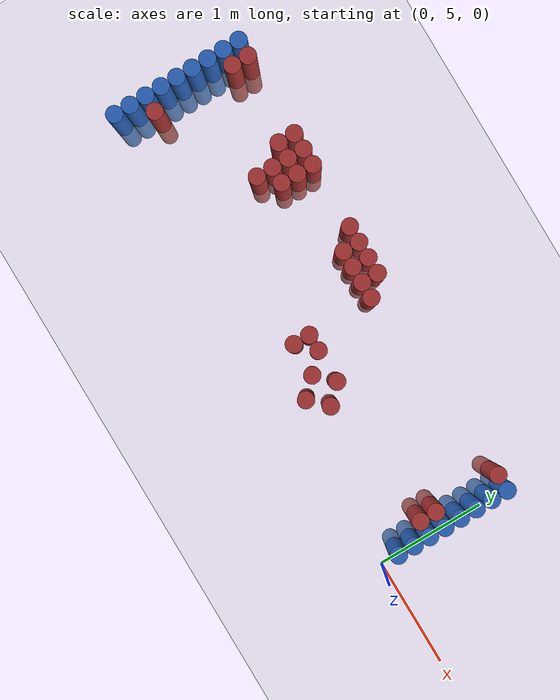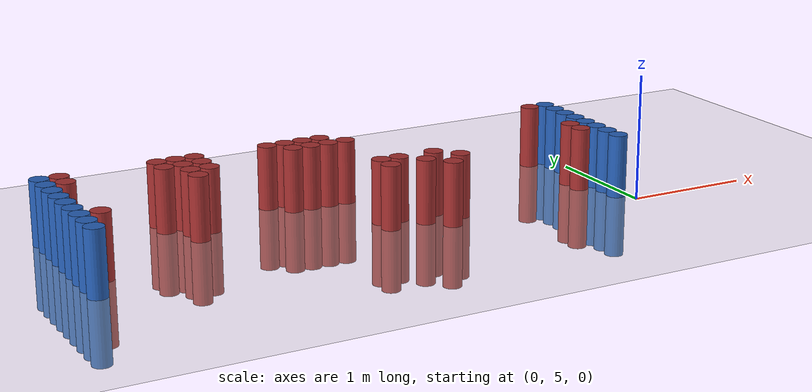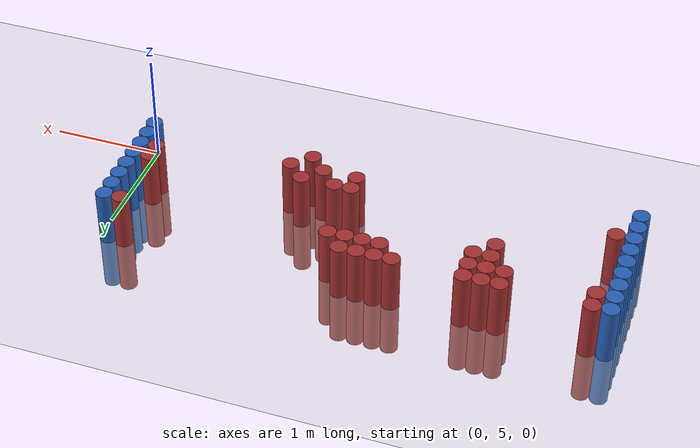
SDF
<sdf version="1.6">
 <world name="default">
  <model name="ground_plane">
   <static>1</static>
   <link name="link">
    <collision name="collision">
     <geometry><plane><normal>0 0 1</normal><size>100 100</size></plane></geometry>
     <surface><friction><ode><mu>100</mu><mu2>50</mu2></ode></friction></surface>
    </collision>
    <visual name="visual">
     <cast_shadows>0</cast_shadows>
     <geometry><plane><normal>0 0 1</normal><size>100 100</size></plane></geometry>
     <material>
      <script><uri>file://media/materials/scripts/gazebo.material</uri><name>Gazebo/Grey</name></script>
     </material>
    </visual>
   </link>
  </model>
  <model name="unit_cylinder_95">
   <static>1</static>
   <pose>-4.425000 5.025000 0.000000 0.000000 0.000000 0.000000</pose>
   <link name="link">
    <inertial>
     <mass>1</mass>
     <inertia><ixx>0.145833</ixx><ixy>0</ixy><ixz>0</ixz><iyy>0.145833</iyy><iyz>0</iyz><izz>0.125</izz></inertia>
    </inertial>
    <collision name="collision">
     <geometry><cylinder><radius>0.075000</radius><length>1</length></cylinder></geometry>
    </collision>
    <visual name="visual">
     <geometry><cylinder><radius>0.075000</radius><length>1</length></cylinder></geometry>
     <material>
      <ambient>0.152000 0.379000 0.720000 1</ambient>
      <diffuse>0.152000 0.379000 0.720000 1</diffuse>
     </material>
     <material>
      <script><name>Gazebo/Grey</name><uri>file://media/materials/scripts/gazebo.material</uri></script>
     </material>
    </visual>
   </link>
  </model>
  <model name="unit_cylinder_96">
   <static>1</static>
   <pose>-4.425000 5.175000 0.000000 0.000000 0.000000 0.000000</pose>
   <link name="link">
    <inertial>
     <mass>1</mass>
     <inertia><ixx>0.145833</ixx><ixy>0</ixy><ixz>0</ixz><iyy>0.145833</iyy><iyz>0</iyz><izz>0.125</izz></inertia>
    </inertial>
    <collision name="collision">
     <geometry><cylinder><radius>0.075000</radius><length>1</length></cylinder></geometry>
    </collision>
    <visual name="visual">
     <geometry><cylinder><radius>0.075000</radius><length>1</length></cylinder></geometry>
     <material>
      <ambient>0.152000 0.379000 0.720000 1</ambient>
      <diffuse>0.152000 0.379000 0.720000 1</diffuse>
     </material>
     <material>
      <script><name>Gazebo/Grey</name><uri>file://media/materials/scripts/gazebo.material</uri></script>
     </material>
    </visual>
   </link>
  </model>
  <model name="unit_cylinder_97">
   <static>1</static>
   <pose>-4.425000 5.325000 0.000000 0.000000 0.000000 0.000000</pose>
   <link name="link">
    <inertial>
     <mass>1</mass>
     <inertia><ixx>0.145833</ixx><ixy>0</ixy><ixz>0</ixz><iyy>0.145833</iyy><iyz>0</iyz><izz>0.125</izz></inertia>
    </inertial>
    <collision name="collision">
     <geometry><cylinder><radius>0.075000</radius><length>1</length></cylinder></geometry>
    </collision>
    <visual name="visual">
     <geometry><cylinder><radius>0.075000</radius><length>1</length></cylinder></geometry>
     <material>
      <ambient>0.152000 0.379000 0.720000 1</ambient>
      <diffuse>0.152000 0.379000 0.720000 1</diffuse>
     </material>
     <material>
      <script><name>Gazebo/Grey</name><uri>file://media/materials/scripts/gazebo.material</uri></script>
     </material>
    </visual>
   </link>
  </model>
  <model name="unit_cylinder_98">
   <static>1</static>
   <pose>-4.425000 5.475000 0.000000 0.000000 0.000000 0.000000</pose>
   <link name="link">
    <inertial>
     <mass>1</mass>
     <inertia><ixx>0.145833</ixx><ixy>0</ixy><ixz>0</ixz><iyy>0.145833</iyy><iyz>0</iyz><izz>0.125</izz></inertia>
    </inertial>
    <collision name="collision">
     <geometry><cylinder><radius>0.075000</radius><length>1</length></cylinder></geometry>
    </collision>
    <visual name="visual">
     <geometry><cylinder><radius>0.075000</radius><length>1</length></cylinder></geometry>
     <material>
      <ambient>0.152000 0.379000 0.720000 1</ambient>
      <diffuse>0.152000 0.379000 0.720000 1</diffuse>
     </material>
     <material>
      <script><name>Gazebo/Grey</name><uri>file://media/materials/scripts/gazebo.material</uri></script>
     </material>
    </visual>
   </link>
  </model>
  <model name="unit_cylinder_99">
   <static>1</static>
   <pose>-4.425000 5.625000 0.000000 0.000000 0.000000 0.000000</pose>
   <link name="link">
    <inertial>
     <mass>1</mass>
     <inertia><ixx>0.145833</ixx><ixy>0</ixy><ixz>0</ixz><iyy>0.145833</iyy><iyz>0</iyz><izz>0.125</izz></inertia>
    </inertial>
    <collision name="collision">
     <geometry><cylinder><radius>0.075000</radius><length>1</length></cylinder></geometry>
    </collision>
    <visual name="visual">
     <geometry><cylinder><radius>0.075000</radius><length>1</length></cylinder></geometry>
     <material>
      <ambient>0.152000 0.379000 0.720000 1</ambient>
      <diffuse>0.152000 0.379000 0.720000 1</diffuse>
     </material>
     <material>
      <script><name>Gazebo/Grey</name><uri>file://media/materials/scripts/gazebo.material</uri></script>
     </material>
    </visual>
   </link>
  </model>
  <model name="unit_cylinder_100">
   <static>1</static>
   <pose>-4.425000 5.775000 0.000000 0.000000 0.000000 0.000000</pose>
   <link name="link">
    <inertial>
     <mass>1</mass>
     <inertia><ixx>0.145833</ixx><ixy>0</ixy><ixz>0</ixz><iyy>0.145833</iyy><iyz>0</iyz><izz>0.125</izz></inertia>
    </inertial>
    <collision name="collision">
     <geometry><cylinder><radius>0.075000</radius><length>1</length></cylinder></geometry>
    </collision>
    <visual name="visual">
     <geometry><cylinder><radius>0.075000</radius><length>1</length></cylinder></geometry>
     <material>
      <ambient>0.152000 0.379000 0.720000 1</ambient>
      <diffuse>0.152000 0.379000 0.720000 1</diffuse>
     </material>
     <material>
      <script><name>Gazebo/Grey</name><uri>file://media/materials/scripts/gazebo.material</uri></script>
     </material>
    </visual>
   </link>
  </model>
  <model name="unit_cylinder_101">
   <static>1</static>
   <pose>-4.425000 5.925000 0.000000 0.000000 0.000000 0.000000</pose>
   <link name="link">
    <inertial>
     <mass>1</mass>
     <inertia><ixx>0.145833</ixx><ixy>0</ixy><ixz>0</ixz><iyy>0.145833</iyy><iyz>0</iyz><izz>0.125</izz></inertia>
    </inertial>
    <collision name="collision">
     <geometry><cylinder><radius>0.075000</radius><length>1</length></cylinder></geometry>
    </collision>
    <visual name="visual">
     <geometry><cylinder><radius>0.075000</radius><length>1</length></cylinder></geometry>
     <material>
      <ambient>0.152000 0.379000 0.720000 1</ambient>
      <diffuse>0.152000 0.379000 0.720000 1</diffuse>
     </material>
     <material>
      <script><name>Gazebo/Grey</name><uri>file://media/materials/scripts/gazebo.material</uri></script>
     </material>
    </visual>
   </link>
  </model>
  <model name="unit_cylinder_102">
   <static>1</static>
   <pose>-4.425000 6.075000 0.000000 0.000000 0.000000 0.000000</pose>
   <link name="link">
    <inertial>
     <mass>1</mass>
     <inertia><ixx>0.145833</ixx><ixy>0</ixy><ixz>0</ixz><iyy>0.145833</iyy><iyz>0</iyz><izz>0.125</izz></inertia>
    </inertial>
    <collision name="collision">
     <geometry><cylinder><radius>0.075000</radius><length>1</length></cylinder></geometry>
    </collision>
    <visual name="visual">
     <geometry><cylinder><radius>0.075000</radius><length>1</length></cylinder></geometry>
     <material>
      <ambient>0.152000 0.379000 0.720000 1</ambient>
      <diffuse>0.152000 0.379000 0.720000 1</diffuse>
     </material>
     <material>
      <script><name>Gazebo/Grey</name><uri>file://media/materials/scripts/gazebo.material</uri></script>
     </material>
    </visual>
   </link>
  </model>
  <model name="unit_cylinder_103">
   <static>1</static>
   <pose>-4.425000 6.225000 0.000000 0.000000 0.000000 0.000000</pose>
   <link name="link">
    <inertial>
     <mass>1</mass>
     <inertia><ixx>0.145833</ixx><ixy>0</ixy><ixz>0</ixz><iyy>0.145833</iyy><iyz>0</iyz><izz>0.125</izz></inertia>
    </inertial>
    <collision name="collision">
     <geometry><cylinder><radius>0.075000</radius><length>1</length></cylinder></geometry>
    </collision>
    <visual name="visual">
     <geometry><cylinder><radius>0.075000</radius><length>1</length></cylinder></geometry>
     <material>
      <ambient>0.152000 0.379000 0.720000 1</ambient>
      <diffuse>0.152000 0.379000 0.720000 1</diffuse>
     </material>
     <material>
      <script><name>Gazebo/Grey</name><uri>file://media/materials/scripts/gazebo.material</uri></script>
     </material>
    </visual>
   </link>
  </model>
  <model name="unit_cylinder_126">
   <static>1</static>
   <pose>-4.275000 5.325000 0.000000 0.000000 0.000000 0.000000</pose>
   <link name="link">
    <inertial>
     <mass>1</mass>
     <inertia><ixx>0.145833</ixx><ixy>0</ixy><ixz>0</ixz><iyy>0.145833</iyy><iyz>0</iyz><izz>0.125</izz></inertia>
    </inertial>
    <collision name="collision">
     <geometry><cylinder><radius>0.075000</radius><length>1</length></cylinder></geometry>
    </collision>
    <visual name="visual">
     <geometry><cylinder><radius>0.075000</radius><length>1</length></cylinder></geometry>
     <material>
      <ambient>0.648000 0.192000 0.192000 1</ambient>
      <diffuse>0.648000 0.192000 0.192000 1</diffuse>
     </material>
     <material>
      <script><name>Gazebo/Grey</name><uri>file://media/materials/scripts/gazebo.material</uri></script>
     </material>
    </visual>
   </link>
  </model>
  <model name="unit_cylinder_127">
   <static>1</static>
   <pose>-4.275000 6.075000 0.000000 0.000000 0.000000 0.000000</pose>
   <link name="link">
    <inertial>
     <mass>1</mass>
     <inertia><ixx>0.145833</ixx><ixy>0</ixy><ixz>0</ixz><iyy>0.145833</iyy><iyz>0</iyz><izz>0.125</izz></inertia>
    </inertial>
    <collision name="collision">
     <geometry><cylinder><radius>0.075000</radius><length>1</length></cylinder></geometry>
    </collision>
    <visual name="visual">
     <geometry><cylinder><radius>0.075000</radius><length>1</length></cylinder></geometry>
     <material>
      <ambient>0.648000 0.192000 0.192000 1</ambient>
      <diffuse>0.648000 0.192000 0.192000 1</diffuse>
     </material>
     <material>
      <script><name>Gazebo/Grey</name><uri>file://media/materials/scripts/gazebo.material</uri></script>
     </material>
    </visual>
   </link>
  </model>
  <model name="unit_cylinder_128">
   <static>1</static>
   <pose>-4.275000 6.225000 0.000000 0.000000 0.000000 0.000000</pose>
   <link name="link">
    <inertial>
     <mass>1</mass>
     <inertia><ixx>0.145833</ixx><ixy>0</ixy><ixz>0</ixz><iyy>0.145833</iyy><iyz>0</iyz><izz>0.125</izz></inertia>
    </inertial>
    <collision name="collision">
     <geometry><cylinder><radius>0.075000</radius><length>1</length></cylinder></geometry>
    </collision>
    <visual name="visual">
     <geometry><cylinder><radius>0.075000</radius><length>1</length></cylinder></geometry>
     <material>
      <ambient>0.648000 0.192000 0.192000 1</ambient>
      <diffuse>0.648000 0.192000 0.192000 1</diffuse>
     </material>
     <material>
      <script><name>Gazebo/Grey</name><uri>file://media/materials/scripts/gazebo.material</uri></script>
     </material>
    </visual>
   </link>
  </model>
  <model name="unit_cylinder_166">
   <static>1</static>
   <pose>-3.525000 6.075000 0.000000 0.000000 0.000000 0.000000</pose>
   <link name="link">
    <inertial>
     <mass>1</mass>
     <inertia><ixx>0.145833</ixx><ixy>0</ixy><ixz>0</ixz><iyy>0.145833</iyy><iyz>0</iyz><izz>0.125</izz></inertia>
    </inertial>
    <collision name="collision">
     <geometry><cylinder><radius>0.075000</radius><length>1</length></cylinder></geometry>
    </collision>
    <visual name="visual">
     <geometry><cylinder><radius>0.075000</radius><length>1</length></cylinder></geometry>
     <material>
      <ambient>0.648000 0.192000 0.192000 1</ambient>
      <diffuse>0.648000 0.192000 0.192000 1</diffuse>
     </material>
     <material>
      <script><name>Gazebo/Grey</name><uri>file://media/materials/scripts/gazebo.material</uri></script>
     </material>
    </visual>
   </link>
  </model>
  <model name="unit_cylinder_167">
   <static>1</static>
   <pose>-3.525000 6.225000 0.000000 0.000000 0.000000 0.000000</pose>
   <link name="link">
    <inertial>
     <mass>1</mass>
     <inertia><ixx>0.145833</ixx><ixy>0</ixy><ixz>0</ixz><iyy>0.145833</iyy><iyz>0</iyz><izz>0.125</izz></inertia>
    </inertial>
    <collision name="collision">
     <geometry><cylinder><radius>0.075000</radius><length>1</length></cylinder></geometry>
    </collision>
    <visual name="visual">
     <geometry><cylinder><radius>0.075000</radius><length>1</length></cylinder></geometry>
     <material>
      <ambient>0.648000 0.192000 0.192000 1</ambient>
      <diffuse>0.648000 0.192000 0.192000 1</diffuse>
     </material>
     <material>
      <script><name>Gazebo/Grey</name><uri>file://media/materials/scripts/gazebo.material</uri></script>
     </material>
    </visual>
   </link>
  </model>
  <model name="unit_cylinder_170">
   <static>1</static>
   <pose>-3.375000 5.775000 0.000000 0.000000 0.000000 0.000000</pose>
   <link name="link">
    <inertial>
     <mass>1</mass>
     <inertia><ixx>0.145833</ixx><ixy>0</ixy><ixz>0</ixz><iyy>0.145833</iyy><iyz>0</iyz><izz>0.125</izz></inertia>
    </inertial>
    <collision name="collision">
     <geometry><cylinder><radius>0.075000</radius><length>1</length></cylinder></geometry>
    </collision>
    <visual name="visual">
     <geometry><cylinder><radius>0.075000</radius><length>1</length></cylinder></geometry>
     <material>
      <ambient>0.648000 0.192000 0.192000 1</ambient>
      <diffuse>0.648000 0.192000 0.192000 1</diffuse>
     </material>
     <material>
      <script><name>Gazebo/Grey</name><uri>file://media/materials/scripts/gazebo.material</uri></script>
     </material>
    </visual>
   </link>
  </model>
  <model name="unit_cylinder_171">
   <static>1</static>
   <pose>-3.375000 5.925000 0.000000 0.000000 0.000000 0.000000</pose>
   <link name="link">
    <inertial>
     <mass>1</mass>
     <inertia><ixx>0.145833</ixx><ixy>0</ixy><ixz>0</ixz><iyy>0.145833</iyy><iyz>0</iyz><izz>0.125</izz></inertia>
    </inertial>
    <collision name="collision">
     <geometry><cylinder><radius>0.075000</radius><length>1</length></cylinder></geometry>
    </collision>
    <visual name="visual">
     <geometry><cylinder><radius>0.075000</radius><length>1</length></cylinder></geometry>
     <material>
      <ambient>0.648000 0.192000 0.192000 1</ambient>
      <diffuse>0.648000 0.192000 0.192000 1</diffuse>
     </material>
     <material>
      <script><name>Gazebo/Grey</name><uri>file://media/materials/scripts/gazebo.material</uri></script>
     </material>
    </visual>
   </link>
  </model>
  <model name="unit_cylinder_172">
   <static>1</static>
   <pose>-3.375000 6.075000 0.000000 0.000000 0.000000 0.000000</pose>
   <link name="link">
    <inertial>
     <mass>1</mass>
     <inertia><ixx>0.145833</ixx><ixy>0</ixy><ixz>0</ixz><iyy>0.145833</iyy><iyz>0</iyz><izz>0.125</izz></inertia>
    </inertial>
    <collision name="collision">
     <geometry><cylinder><radius>0.075000</radius><length>1</length></cylinder></geometry>
    </collision>
    <visual name="visual">
     <geometry><cylinder><radius>0.075000</radius><length>1</length></cylinder></geometry>
     <material>
      <ambient>0.648000 0.192000 0.192000 1</ambient>
      <diffuse>0.648000 0.192000 0.192000 1</diffuse>
     </material>
     <material>
      <script><name>Gazebo/Grey</name><uri>file://media/materials/scripts/gazebo.material</uri></script>
     </material>
    </visual>
   </link>
  </model>
  <model name="unit_cylinder_173">
   <static>1</static>
   <pose>-3.375000 6.225000 0.000000 0.000000 0.000000 0.000000</pose>
   <link name="link">
    <inertial>
     <mass>1</mass>
     <inertia><ixx>0.145833</ixx><ixy>0</ixy><ixz>0</ixz><iyy>0.145833</iyy><iyz>0</iyz><izz>0.125</izz></inertia>
    </inertial>
    <collision name="collision">
     <geometry><cylinder><radius>0.075000</radius><length>1</length></cylinder></geometry>
    </collision>
    <visual name="visual">
     <geometry><cylinder><radius>0.075000</radius><length>1</length></cylinder></geometry>
     <material>
      <ambient>0.648000 0.192000 0.192000 1</ambient>
      <diffuse>0.648000 0.192000 0.192000 1</diffuse>
     </material>
     <material>
      <script><name>Gazebo/Grey</name><uri>file://media/materials/scripts/gazebo.material</uri></script>
     </material>
    </visual>
   </link>
  </model>
  <model name="unit_cylinder_177">
   <static>1</static>
   <pose>-3.225000 5.925000 0.000000 0.000000 0.000000 0.000000</pose>
   <link name="link">
    <inertial>
     <mass>1</mass>
     <inertia><ixx>0.145833</ixx><ixy>0</ixy><ixz>0</ixz><iyy>0.145833</iyy><iyz>0</iyz><izz>0.125</izz></inertia>
    </inertial>
    <collision name="collision">
     <geometry><cylinder><radius>0.075000</radius><length>1</length></cylinder></geometry>
    </collision>
    <visual name="visual">
     <geometry><cylinder><radius>0.075000</radius><length>1</length></cylinder></geometry>
     <material>
      <ambient>0.648000 0.192000 0.192000 1</ambient>
      <diffuse>0.648000 0.192000 0.192000 1</diffuse>
     </material>
     <material>
      <script><name>Gazebo/Grey</name><uri>file://media/materials/scripts/gazebo.material</uri></script>
     </material>
    </visual>
   </link>
  </model>
  <model name="unit_cylinder_178">
   <static>1</static>
   <pose>-3.225000 6.075000 0.000000 0.000000 0.000000 0.000000</pose>
   <link name="link">
    <inertial>
     <mass>1</mass>
     <inertia><ixx>0.145833</ixx><ixy>0</ixy><ixz>0</ixz><iyy>0.145833</iyy><iyz>0</iyz><izz>0.125</izz></inertia>
    </inertial>
    <collision name="collision">
     <geometry><cylinder><radius>0.075000</radius><length>1</length></cylinder></geometry>
    </collision>
    <visual name="visual">
     <geometry><cylinder><radius>0.075000</radius><length>1</length></cylinder></geometry>
     <material>
      <ambient>0.648000 0.192000 0.192000 1</ambient>
      <diffuse>0.648000 0.192000 0.192000 1</diffuse>
     </material>
     <material>
      <script><name>Gazebo/Grey</name><uri>file://media/materials/scripts/gazebo.material</uri></script>
     </material>
    </visual>
   </link>
  </model>
  <model name="unit_cylinder_179">
   <static>1</static>
   <pose>-3.225000 6.225000 0.000000 0.000000 0.000000 0.000000</pose>
   <link name="link">
    <inertial>
     <mass>1</mass>
     <inertia><ixx>0.145833</ixx><ixy>0</ixy><ixz>0</ixz><iyy>0.145833</iyy><iyz>0</iyz><izz>0.125</izz></inertia>
    </inertial>
    <collision name="collision">
     <geometry><cylinder><radius>0.075000</radius><length>1</length></cylinder></geometry>
    </collision>
    <visual name="visual">
     <geometry><cylinder><radius>0.075000</radius><length>1</length></cylinder></geometry>
     <material>
      <ambient>0.648000 0.192000 0.192000 1</ambient>
      <diffuse>0.648000 0.192000 0.192000 1</diffuse>
     </material>
     <material>
      <script><name>Gazebo/Grey</name><uri>file://media/materials/scripts/gazebo.material</uri></script>
     </material>
    </visual>
   </link>
  </model>
  <model name="unit_cylinder_199">
   <static>1</static>
   <pose>-2.625000 6.225000 0.000000 0.000000 0.000000 0.000000</pose>
   <link name="link">
    <inertial>
     <mass>1</mass>
     <inertia><ixx>0.145833</ixx><ixy>0</ixy><ixz>0</ixz><iyy>0.145833</iyy><iyz>0</iyz><izz>0.125</izz></inertia>
    </inertial>
    <collision name="collision">
     <geometry><cylinder><radius>0.075000</radius><length>1</length></cylinder></geometry>
    </collision>
    <visual name="visual">
     <geometry><cylinder><radius>0.075000</radius><length>1</length></cylinder></geometry>
     <material>
      <ambient>0.648000 0.192000 0.192000 1</ambient>
      <diffuse>0.648000 0.192000 0.192000 1</diffuse>
     </material>
     <material>
      <script><name>Gazebo/Grey</name><uri>file://media/materials/scripts/gazebo.material</uri></script>
     </material>
    </visual>
   </link>
  </model>
  <model name="unit_cylinder_203">
   <static>1</static>
   <pose>-2.475000 6.075000 0.000000 0.000000 0.000000 0.000000</pose>
   <link name="link">
    <inertial>
     <mass>1</mass>
     <inertia><ixx>0.145833</ixx><ixy>0</ixy><ixz>0</ixz><iyy>0.145833</iyy><iyz>0</iyz><izz>0.125</izz></inertia>
    </inertial>
    <collision name="collision">
     <geometry><cylinder><radius>0.075000</radius><length>1</length></cylinder></geometry>
    </collision>
    <visual name="visual">
     <geometry><cylinder><radius>0.075000</radius><length>1</length></cylinder></geometry>
     <material>
      <ambient>0.648000 0.192000 0.192000 1</ambient>
      <diffuse>0.648000 0.192000 0.192000 1</diffuse>
     </material>
     <material>
      <script><name>Gazebo/Grey</name><uri>file://media/materials/scripts/gazebo.material</uri></script>
     </material>
    </visual>
   </link>
  </model>
  <model name="unit_cylinder_204">
   <static>1</static>
   <pose>-2.475000 6.225000 0.000000 0.000000 0.000000 0.000000</pose>
   <link name="link">
    <inertial>
     <mass>1</mass>
     <inertia><ixx>0.145833</ixx><ixy>0</ixy><ixz>0</ixz><iyy>0.145833</iyy><iyz>0</iyz><izz>0.125</izz></inertia>
    </inertial>
    <collision name="collision">
     <geometry><cylinder><radius>0.075000</radius><length>1</length></cylinder></geometry>
    </collision>
    <visual name="visual">
     <geometry><cylinder><radius>0.075000</radius><length>1</length></cylinder></geometry>
     <material>
      <ambient>0.648000 0.192000 0.192000 1</ambient>
      <diffuse>0.648000 0.192000 0.192000 1</diffuse>
     </material>
     <material>
      <script><name>Gazebo/Grey</name><uri>file://media/materials/scripts/gazebo.material</uri></script>
     </material>
    </visual>
   </link>
  </model>
  <model name="unit_cylinder_207">
   <static>1</static>
   <pose>-2.325000 6.075000 0.000000 0.000000 0.000000 0.000000</pose>
   <link name="link">
    <inertial>
     <mass>1</mass>
     <inertia><ixx>0.145833</ixx><ixy>0</ixy><ixz>0</ixz><iyy>0.145833</iyy><iyz>0</iyz><izz>0.125</izz></inertia>
    </inertial>
    <collision name="collision">
     <geometry><cylinder><radius>0.075000</radius><length>1</length></cylinder></geometry>
    </collision>
    <visual name="visual">
     <geometry><cylinder><radius>0.075000</radius><length>1</length></cylinder></geometry>
     <material>
      <ambient>0.648000 0.192000 0.192000 1</ambient>
      <diffuse>0.648000 0.192000 0.192000 1</diffuse>
     </material>
     <material>
      <script><name>Gazebo/Grey</name><uri>file://media/materials/scripts/gazebo.material</uri></script>
     </material>
    </visual>
   </link>
  </model>
  <model name="unit_cylinder_208">
   <static>1</static>
   <pose>-2.325000 6.225000 0.000000 0.000000 0.000000 0.000000</pose>
   <link name="link">
    <inertial>
     <mass>1</mass>
     <inertia><ixx>0.145833</ixx><ixy>0</ixy><ixz>0</ixz><iyy>0.145833</iyy><iyz>0</iyz><izz>0.125</izz></inertia>
    </inertial>
    <collision name="collision">
     <geometry><cylinder><radius>0.075000</radius><length>1</length></cylinder></geometry>
    </collision>
    <visual name="visual">
     <geometry><cylinder><radius>0.075000</radius><length>1</length></cylinder></geometry>
     <material>
      <ambient>0.648000 0.192000 0.192000 1</ambient>
      <diffuse>0.648000 0.192000 0.192000 1</diffuse>
     </material>
     <material>
      <script><name>Gazebo/Grey</name><uri>file://media/materials/scripts/gazebo.material</uri></script>
     </material>
    </visual>
   </link>
  </model>
  <model name="unit_cylinder_212">
   <static>1</static>
   <pose>-2.175000 6.075000 0.000000 0.000000 0.000000 0.000000</pose>
   <link name="link">
    <inertial>
     <mass>1</mass>
     <inertia><ixx>0.145833</ixx><ixy>0</ixy><ixz>0</ixz><iyy>0.145833</iyy><iyz>0</iyz><izz>0.125</izz></inertia>
    </inertial>
    <collision name="collision">
     <geometry><cylinder><radius>0.075000</radius><length>1</length></cylinder></geometry>
    </collision>
    <visual name="visual">
     <geometry><cylinder><radius>0.075000</radius><length>1</length></cylinder></geometry>
     <material>
      <ambient>0.648000 0.192000 0.192000 1</ambient>
      <diffuse>0.648000 0.192000 0.192000 1</diffuse>
     </material>
     <material>
      <script><name>Gazebo/Grey</name><uri>file://media/materials/scripts/gazebo.material</uri></script>
     </material>
    </visual>
   </link>
  </model>
  <model name="unit_cylinder_213">
   <static>1</static>
   <pose>-2.175000 6.225000 0.000000 0.000000 0.000000 0.000000</pose>
   <link name="link">
    <inertial>
     <mass>1</mass>
     <inertia><ixx>0.145833</ixx><ixy>0</ixy><ixz>0</ixz><iyy>0.145833</iyy><iyz>0</iyz><izz>0.125</izz></inertia>
    </inertial>
    <collision name="collision">
     <geometry><cylinder><radius>0.075000</radius><length>1</length></cylinder></geometry>
    </collision>
    <visual name="visual">
     <geometry><cylinder><radius>0.075000</radius><length>1</length></cylinder></geometry>
     <material>
      <ambient>0.648000 0.192000 0.192000 1</ambient>
      <diffuse>0.648000 0.192000 0.192000 1</diffuse>
     </material>
     <material>
      <script><name>Gazebo/Grey</name><uri>file://media/materials/scripts/gazebo.material</uri></script>
     </material>
    </visual>
   </link>
  </model>
  <model name="unit_cylinder_217">
   <static>1</static>
   <pose>-2.025000 5.325000 0.000000 0.000000 0.000000 0.000000</pose>
   <link name="link">
    <inertial>
     <mass>1</mass>
     <inertia><ixx>0.145833</ixx><ixy>0</ixy><ixz>0</ixz><iyy>0.145833</iyy><iyz>0</iyz><izz>0.125</izz></inertia>
    </inertial>
    <collision name="collision">
     <geometry><cylinder><radius>0.075000</radius><length>1</length></cylinder></geometry>
    </collision>
    <visual name="visual">
     <geometry><cylinder><radius>0.075000</radius><length>1</length></cylinder></geometry>
     <material>
      <ambient>0.648000 0.192000 0.192000 1</ambient>
      <diffuse>0.648000 0.192000 0.192000 1</diffuse>
     </material>
     <material>
      <script><name>Gazebo/Grey</name><uri>file://media/materials/scripts/gazebo.material</uri></script>
     </material>
    </visual>
   </link>
  </model>
  <model name="unit_cylinder_218">
   <static>1</static>
   <pose>-2.025000 5.475000 0.000000 0.000000 0.000000 0.000000</pose>
   <link name="link">
    <inertial>
     <mass>1</mass>
     <inertia><ixx>0.145833</ixx><ixy>0</ixy><ixz>0</ixz><iyy>0.145833</iyy><iyz>0</iyz><izz>0.125</izz></inertia>
    </inertial>
    <collision name="collision">
     <geometry><cylinder><radius>0.075000</radius><length>1</length></cylinder></geometry>
    </collision>
    <visual name="visual">
     <geometry><cylinder><radius>0.075000</radius><length>1</length></cylinder></geometry>
     <material>
      <ambient>0.648000 0.192000 0.192000 1</ambient>
      <diffuse>0.648000 0.192000 0.192000 1</diffuse>
     </material>
     <material>
      <script><name>Gazebo/Grey</name><uri>file://media/materials/scripts/gazebo.material</uri></script>
     </material>
    </visual>
   </link>
  </model>
  <model name="unit_cylinder_219">
   <static>1</static>
   <pose>-2.025000 6.075000 0.000000 0.000000 0.000000 0.000000</pose>
   <link name="link">
    <inertial>
     <mass>1</mass>
     <inertia><ixx>0.145833</ixx><ixy>0</ixy><ixz>0</ixz><iyy>0.145833</iyy><iyz>0</iyz><izz>0.125</izz></inertia>
    </inertial>
    <collision name="collision">
     <geometry><cylinder><radius>0.075000</radius><length>1</length></cylinder></geometry>
    </collision>
    <visual name="visual">
     <geometry><cylinder><radius>0.075000</radius><length>1</length></cylinder></geometry>
     <material>
      <ambient>0.648000 0.192000 0.192000 1</ambient>
      <diffuse>0.648000 0.192000 0.192000 1</diffuse>
     </material>
     <material>
      <script><name>Gazebo/Grey</name><uri>file://media/materials/scripts/gazebo.material</uri></script>
     </material>
    </visual>
   </link>
  </model>
  <model name="unit_cylinder_222">
   <static>1</static>
   <pose>-1.875000 5.475000 0.000000 0.000000 0.000000 0.000000</pose>
   <link name="link">
    <inertial>
     <mass>1</mass>
     <inertia><ixx>0.145833</ixx><ixy>0</ixy><ixz>0</ixz><iyy>0.145833</iyy><iyz>0</iyz><izz>0.125</izz></inertia>
    </inertial>
    <collision name="collision">
     <geometry><cylinder><radius>0.075000</radius><length>1</length></cylinder></geometry>
    </collision>
    <visual name="visual">
     <geometry><cylinder><radius>0.075000</radius><length>1</length></cylinder></geometry>
     <material>
      <ambient>0.648000 0.192000 0.192000 1</ambient>
      <diffuse>0.648000 0.192000 0.192000 1</diffuse>
     </material>
     <material>
      <script><name>Gazebo/Grey</name><uri>file://media/materials/scripts/gazebo.material</uri></script>
     </material>
    </visual>
   </link>
  </model>
  <model name="unit_cylinder_223">
   <static>1</static>
   <pose>-1.725000 5.325000 0.000000 0.000000 0.000000 0.000000</pose>
   <link name="link">
    <inertial>
     <mass>1</mass>
     <inertia><ixx>0.145833</ixx><ixy>0</ixy><ixz>0</ixz><iyy>0.145833</iyy><iyz>0</iyz><izz>0.125</izz></inertia>
    </inertial>
    <collision name="collision">
     <geometry><cylinder><radius>0.075000</radius><length>1</length></cylinder></geometry>
    </collision>
    <visual name="visual">
     <geometry><cylinder><radius>0.075000</radius><length>1</length></cylinder></geometry>
     <material>
      <ambient>0.648000 0.192000 0.192000 1</ambient>
      <diffuse>0.648000 0.192000 0.192000 1</diffuse>
     </material>
     <material>
      <script><name>Gazebo/Grey</name><uri>file://media/materials/scripts/gazebo.material</uri></script>
     </material>
    </visual>
   </link>
  </model>
  <model name="unit_cylinder_224">
   <static>1</static>
   <pose>-1.575000 5.175000 0.000000 0.000000 0.000000 0.000000</pose>
   <link name="link">
    <inertial>
     <mass>1</mass>
     <inertia><ixx>0.145833</ixx><ixy>0</ixy><ixz>0</ixz><iyy>0.145833</iyy><iyz>0</iyz><izz>0.125</izz></inertia>
    </inertial>
    <collision name="collision">
     <geometry><cylinder><radius>0.075000</radius><length>1</length></cylinder></geometry>
    </collision>
    <visual name="visual">
     <geometry><cylinder><radius>0.075000</radius><length>1</length></cylinder></geometry>
     <material>
      <ambient>0.648000 0.192000 0.192000 1</ambient>
      <diffuse>0.648000 0.192000 0.192000 1</diffuse>
     </material>
     <material>
      <script><name>Gazebo/Grey</name><uri>file://media/materials/scripts/gazebo.material</uri></script>
     </material>
    </visual>
   </link>
  </model>
  <model name="unit_cylinder_225">
   <static>1</static>
   <pose>-1.575000 5.475000 0.000000 0.000000 0.000000 0.000000</pose>
   <link name="link">
    <inertial>
     <mass>1</mass>
     <inertia><ixx>0.145833</ixx><ixy>0</ixy><ixz>0</ixz><iyy>0.145833</iyy><iyz>0</iyz><izz>0.125</izz></inertia>
    </inertial>
    <collision name="collision">
     <geometry><cylinder><radius>0.075000</radius><length>1</length></cylinder></geometry>
    </collision>
    <visual name="visual">
     <geometry><cylinder><radius>0.075000</radius><length>1</length></cylinder></geometry>
     <material>
      <ambient>0.648000 0.192000 0.192000 1</ambient>
      <diffuse>0.648000 0.192000 0.192000 1</diffuse>
     </material>
     <material>
      <script><name>Gazebo/Grey</name><uri>file://media/materials/scripts/gazebo.material</uri></script>
     </material>
    </visual>
   </link>
  </model>
  <model name="unit_cylinder_229">
   <static>1</static>
   <pose>-1.425000 5.325000 0.000000 0.000000 0.000000 0.000000</pose>
   <link name="link">
    <inertial>
     <mass>1</mass>
     <inertia><ixx>0.145833</ixx><ixy>0</ixy><ixz>0</ixz><iyy>0.145833</iyy><iyz>0</iyz><izz>0.125</izz></inertia>
    </inertial>
    <collision name="collision">
     <geometry><cylinder><radius>0.075000</radius><length>1</length></cylinder></geometry>
    </collision>
    <visual name="visual">
     <geometry><cylinder><radius>0.075000</radius><length>1</length></cylinder></geometry>
     <material>
      <ambient>0.648000 0.192000 0.192000 1</ambient>
      <diffuse>0.648000 0.192000 0.192000 1</diffuse>
     </material>
     <material>
      <script><name>Gazebo/Grey</name><uri>file://media/materials/scripts/gazebo.material</uri></script>
     </material>
    </visual>
   </link>
  </model>
  <model name="unit_cylinder_243">
   <static>1</static>
   <pose>-0.225000 5.475000 0.000000 0.000000 0.000000 0.000000</pose>
   <link name="link">
    <inertial>
     <mass>1</mass>
     <inertia><ixx>0.145833</ixx><ixy>0</ixy><ixz>0</ixz><iyy>0.145833</iyy><iyz>0</iyz><izz>0.125</izz></inertia>
    </inertial>
    <collision name="collision">
     <geometry><cylinder><radius>0.075000</radius><length>1</length></cylinder></geometry>
    </collision>
    <visual name="visual">
     <geometry><cylinder><radius>0.075000</radius><length>1</length></cylinder></geometry>
     <material>
      <ambient>0.648000 0.192000 0.192000 1</ambient>
      <diffuse>0.648000 0.192000 0.192000 1</diffuse>
     </material>
     <material>
      <script><name>Gazebo/Grey</name><uri>file://media/materials/scripts/gazebo.material</uri></script>
     </material>
    </visual>
   </link>
  </model>
  <model name="unit_cylinder_244">
   <static>1</static>
   <pose>-0.225000 5.625000 0.000000 0.000000 0.000000 0.000000</pose>
   <link name="link">
    <inertial>
     <mass>1</mass>
     <inertia><ixx>0.145833</ixx><ixy>0</ixy><ixz>0</ixz><iyy>0.145833</iyy><iyz>0</iyz><izz>0.125</izz></inertia>
    </inertial>
    <collision name="collision">
     <geometry><cylinder><radius>0.075000</radius><length>1</length></cylinder></geometry>
    </collision>
    <visual name="visual">
     <geometry><cylinder><radius>0.075000</radius><length>1</length></cylinder></geometry>
     <material>
      <ambient>0.648000 0.192000 0.192000 1</ambient>
      <diffuse>0.648000 0.192000 0.192000 1</diffuse>
     </material>
     <material>
      <script><name>Gazebo/Grey</name><uri>file://media/materials/scripts/gazebo.material</uri></script>
     </material>
    </visual>
   </link>
  </model>
  <model name="unit_cylinder_245">
   <static>1</static>
   <pose>-0.225000 6.225000 0.000000 0.000000 0.000000 0.000000</pose>
   <link name="link">
    <inertial>
     <mass>1</mass>
     <inertia><ixx>0.145833</ixx><ixy>0</ixy><ixz>0</ixz><iyy>0.145833</iyy><iyz>0</iyz><izz>0.125</izz></inertia>
    </inertial>
    <collision name="collision">
     <geometry><cylinder><radius>0.075000</radius><length>1</length></cylinder></geometry>
    </collision>
    <visual name="visual">
     <geometry><cylinder><radius>0.075000</radius><length>1</length></cylinder></geometry>
     <material>
      <ambient>0.648000 0.192000 0.192000 1</ambient>
      <diffuse>0.648000 0.192000 0.192000 1</diffuse>
     </material>
     <material>
      <script><name>Gazebo/Grey</name><uri>file://media/materials/scripts/gazebo.material</uri></script>
     </material>
    </visual>
   </link>
  </model>
  <model name="unit_cylinder_253">
   <static>1</static>
   <pose>-0.075000 5.175000 0.000000 0.000000 0.000000 0.000000</pose>
   <link name="link">
    <inertial>
     <mass>1</mass>
     <inertia><ixx>0.145833</ixx><ixy>0</ixy><ixz>0</ixz><iyy>0.145833</iyy><iyz>0</iyz><izz>0.125</izz></inertia>
    </inertial>
    <collision name="collision">
     <geometry><cylinder><radius>0.075000</radius><length>1</length></cylinder></geometry>
    </collision>
    <visual name="visual">
     <geometry><cylinder><radius>0.075000</radius><length>1</length></cylinder></geometry>
     <material>
      <ambient>0.152000 0.379000 0.720000 1</ambient>
      <diffuse>0.152000 0.379000 0.720000 1</diffuse>
     </material>
     <material>
      <script><name>Gazebo/Grey</name><uri>file://media/materials/scripts/gazebo.material</uri></script>
     </material>
    </visual>
   </link>
  </model>
  <model name="unit_cylinder_254">
   <static>1</static>
   <pose>-0.075000 5.325000 0.000000 0.000000 0.000000 0.000000</pose>
   <link name="link">
    <inertial>
     <mass>1</mass>
     <inertia><ixx>0.145833</ixx><ixy>0</ixy><ixz>0</ixz><iyy>0.145833</iyy><iyz>0</iyz><izz>0.125</izz></inertia>
    </inertial>
    <collision name="collision">
     <geometry><cylinder><radius>0.075000</radius><length>1</length></cylinder></geometry>
    </collision>
    <visual name="visual">
     <geometry><cylinder><radius>0.075000</radius><length>1</length></cylinder></geometry>
     <material>
      <ambient>0.152000 0.379000 0.720000 1</ambient>
      <diffuse>0.152000 0.379000 0.720000 1</diffuse>
     </material>
     <material>
      <script><name>Gazebo/Grey</name><uri>file://media/materials/scripts/gazebo.material</uri></script>
     </material>
    </visual>
   </link>
  </model>
  <model name="unit_cylinder_255">
   <static>1</static>
   <pose>-0.075000 5.475000 0.000000 0.000000 0.000000 0.000000</pose>
   <link name="link">
    <inertial>
     <mass>1</mass>
     <inertia><ixx>0.145833</ixx><ixy>0</ixy><ixz>0</ixz><iyy>0.145833</iyy><iyz>0</iyz><izz>0.125</izz></inertia>
    </inertial>
    <collision name="collision">
     <geometry><cylinder><radius>0.075000</radius><length>1</length></cylinder></geometry>
    </collision>
    <visual name="visual">
     <geometry><cylinder><radius>0.075000</radius><length>1</length></cylinder></geometry>
     <material>
      <ambient>0.152000 0.379000 0.720000 1</ambient>
      <diffuse>0.152000 0.379000 0.720000 1</diffuse>
     </material>
     <material>
      <script><name>Gazebo/Grey</name><uri>file://media/materials/scripts/gazebo.material</uri></script>
     </material>
    </visual>
   </link>
  </model>
  <model name="unit_cylinder_256">
   <static>1</static>
   <pose>-0.075000 5.625000 0.000000 0.000000 0.000000 0.000000</pose>
   <link name="link">
    <inertial>
     <mass>1</mass>
     <inertia><ixx>0.145833</ixx><ixy>0</ixy><ixz>0</ixz><iyy>0.145833</iyy><iyz>0</iyz><izz>0.125</izz></inertia>
    </inertial>
    <collision name="collision">
     <geometry><cylinder><radius>0.075000</radius><length>1</length></cylinder></geometry>
    </collision>
    <visual name="visual">
     <geometry><cylinder><radius>0.075000</radius><length>1</length></cylinder></geometry>
     <material>
      <ambient>0.152000 0.379000 0.720000 1</ambient>
      <diffuse>0.152000 0.379000 0.720000 1</diffuse>
     </material>
     <material>
      <script><name>Gazebo/Grey</name><uri>file://media/materials/scripts/gazebo.material</uri></script>
     </material>
    </visual>
   </link>
  </model>
  <model name="unit_cylinder_257">
   <static>1</static>
   <pose>-0.075000 5.775000 0.000000 0.000000 0.000000 0.000000</pose>
   <link name="link">
    <inertial>
     <mass>1</mass>
     <inertia><ixx>0.145833</ixx><ixy>0</ixy><ixz>0</ixz><iyy>0.145833</iyy><iyz>0</iyz><izz>0.125</izz></inertia>
    </inertial>
    <collision name="collision">
     <geometry><cylinder><radius>0.075000</radius><length>1</length></cylinder></geometry>
    </collision>
    <visual name="visual">
     <geometry><cylinder><radius>0.075000</radius><length>1</length></cylinder></geometry>
     <material>
      <ambient>0.152000 0.379000 0.720000 1</ambient>
      <diffuse>0.152000 0.379000 0.720000 1</diffuse>
     </material>
     <material>
      <script><name>Gazebo/Grey</name><uri>file://media/materials/scripts/gazebo.material</uri></script>
     </material>
    </visual>
   </link>
  </model>
  <model name="unit_cylinder_258">
   <static>1</static>
   <pose>-0.075000 5.925000 0.000000 0.000000 0.000000 0.000000</pose>
   <link name="link">
    <inertial>
     <mass>1</mass>
     <inertia><ixx>0.145833</ixx><ixy>0</ixy><ixz>0</ixz><iyy>0.145833</iyy><iyz>0</iyz><izz>0.125</izz></inertia>
    </inertial>
    <collision name="collision">
     <geometry><cylinder><radius>0.075000</radius><length>1</length></cylinder></geometry>
    </collision>
    <visual name="visual">
     <geometry><cylinder><radius>0.075000</radius><length>1</length></cylinder></geometry>
     <material>
      <ambient>0.152000 0.379000 0.720000 1</ambient>
      <diffuse>0.152000 0.379000 0.720000 1</diffuse>
     </material>
     <material>
      <script><name>Gazebo/Grey</name><uri>file://media/materials/scripts/gazebo.material</uri></script>
     </material>
    </visual>
   </link>
  </model>
  <model name="unit_cylinder_259">
   <static>1</static>
   <pose>-0.075000 6.075000 0.000000 0.000000 0.000000 0.000000</pose>
   <link name="link">
    <inertial>
     <mass>1</mass>
     <inertia><ixx>0.145833</ixx><ixy>0</ixy><ixz>0</ixz><iyy>0.145833</iyy><iyz>0</iyz><izz>0.125</izz></inertia>
    </inertial>
    <collision name="collision">
     <geometry><cylinder><radius>0.075000</radius><length>1</length></cylinder></geometry>
    </collision>
    <visual name="visual">
     <geometry><cylinder><radius>0.075000</radius><length>1</length></cylinder></geometry>
     <material>
      <ambient>0.152000 0.379000 0.720000 1</ambient>
      <diffuse>0.152000 0.379000 0.720000 1</diffuse>
     </material>
     <material>
      <script><name>Gazebo/Grey</name><uri>file://media/materials/scripts/gazebo.material</uri></script>
     </material>
    </visual>
   </link>
  </model>
  <model name="unit_cylinder_260">
   <static>1</static>
   <pose>-0.075000 6.225000 0.000000 0.000000 0.000000 0.000000</pose>
   <link name="link">
    <inertial>
     <mass>1</mass>
     <inertia><ixx>0.145833</ixx><ixy>0</ixy><ixz>0</ixz><iyy>0.145833</iyy><iyz>0</iyz><izz>0.125</izz></inertia>
    </inertial>
    <collision name="collision">
     <geometry><cylinder><radius>0.075000</radius><length>1</length></cylinder></geometry>
    </collision>
    <visual name="visual">
     <geometry><cylinder><radius>0.075000</radius><length>1</length></cylinder></geometry>
     <material>
      <ambient>0.152000 0.379000 0.720000 1</ambient>
      <diffuse>0.152000 0.379000 0.720000 1</diffuse>
     </material>
     <material>
      <script><name>Gazebo/Grey</name><uri>file://media/materials/scripts/gazebo.material</uri></script>
     </material>
    </visual>
   </link>
  </model>
 </world>
</sdf>
